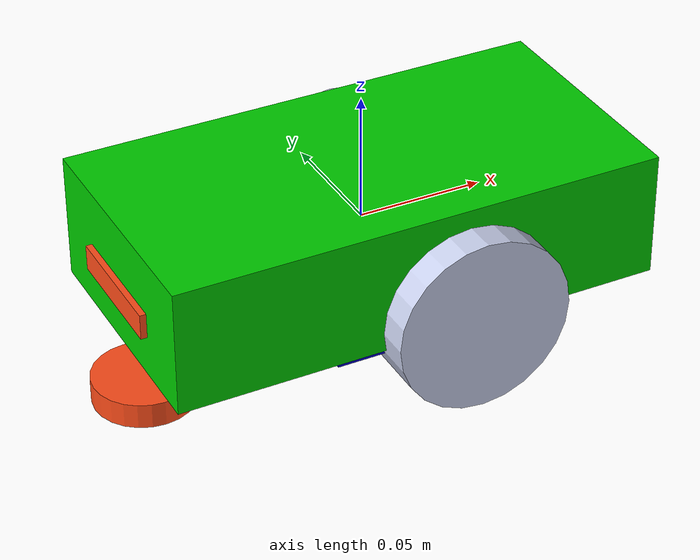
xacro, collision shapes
<?xml version="1.0"?>
<robot xmlns:xacro="http://ros.org/wiki/xacro"
       xmlns:gazebo="http://www.gazebosim.org/schema/gazebo_urdf"
       name="diffbot">

  <!-- === Propiedades === -->

  <xacro:property name="chassis_mass" value="0.800"/>
  <xacro:property name="base_color" value="green"/>
  <xacro:property name="wheel_radius" value="0.035"/> <!-- Radio de la rueda en metros -->
  <xacro:property name="wheel_width" value="0.025"/> <!-- Ancho de la rueda en metros -->
  <xacro:property name="wheel_separation" value="0.16"/> <!-- Separación entre ruedas en metros -->
  <xacro:property name="wheel_color" value="silver"/>
  <xacro:property name="caster_origin_xyz" value="-0.075 0 -0.0075"/> <!-- Posición del caster respecto al chasis -->
  <xacro:property name="caster_color" value="orange"/>

  <!-- === Includes === -->

  <xacro:include filename="$(find tp1_robot)/urdf/inertial_macros.xacro"/>
  <xacro:include filename="$(find tp1_robot)/urdf/motor.xacro"/>

  <!-- === Chasis del robot === -->

  <link name="base_link">
    <visual>
      <geometry>
        <mesh filename="file://$(find tp1_robot)/meshes/chassis.stl"/>
      </geometry>
      <material name="${base_color}"/>
    </visual>
    <collision>
      <geometry>
        <box size="0.195 0.1 0.05"/> <!-- Tamaño del chasis (x: largo, y: ancho, z: alto) -->
      </geometry>
    </collision>
    <xacro:inertial_box mass="${chassis_mass}" x="0.195" y="0.1" z="0.05"/>
  </link>

  <!-- === Macro para ruedas === -->

  <xacro:macro name="wheel" params="prefix xyz axis rpy">
    <link name="${prefix}_wheel">
      <visual>
        <origin xyz="0 0 0" rpy="1.5708 0 0"/>
        <geometry>
          <mesh filename="file://$(find tp1_robot)/meshes/wheel.stl"/>
        </geometry>
        <material name="${wheel_color}"/>
      </visual>
      <collision>
        <origin xyz="0 0 0" rpy="1.5708 0 0"/>
        <geometry>
          <cylinder radius="${wheel_radius}" length="${wheel_width}"/>
        </geometry>
        <!-- Contacto dentro de collision -->
        <contact>
          <ode>
            <min_depth>0.001</min_depth>
            <kp>1e3</kp>
            <kd>1e1</kd>
          </ode>
        </contact>
      </collision>
      <xacro:inertial_cylinder mass="0.150" radius="${wheel_radius}" length="${wheel_width}">
        <origin xyz="0 0 0" rpy="0 0 0"/>
      </xacro:inertial_cylinder>
    </link>

    <joint name="${prefix}_wheel_joint" type="continuous">
      <origin xyz="${xyz}" rpy="${rpy}"/>
      <parent link="base_link"/>
      <child link="${prefix}_wheel"/>
      <axis xyz="${axis}"/>
      <limit effort="10.0" velocity="10.0"/>
      <dynamics damping="0.1"/>
    </joint>

    <!-- Gazebo settings -->
    <gazebo reference="${prefix}_wheel">
      <mu1>1.0</mu1>
      <mu2>1.0</mu2>
      <material>Gazebo/Grey</material>
    </gazebo>
  </xacro:macro>

  <!-- === Ruedas y motores === -->

  <xacro:wheel prefix="left" xyz="0.0185  0.05 -0.0175" axis="0 1 0" rpy="0 1.5708 0"/>
  <xacro:wheel prefix="right" xyz="0.0185 -0.05 -0.0175" axis="0 1 0" rpy="0 1.5708 3.14159"/>
  <xacro:motor prefix="left" chassis_width="0.1" reflect="false"/>
  <xacro:motor prefix="right" chassis_width="0.1" reflect="true"/>

  <!-- === Caster === -->

  <link name="caster">
    <visual>
      <origin xyz="0 0 0.0045" rpy="0 0 0"/>
      <geometry>
        <mesh filename="file://$(find tp1_robot)/meshes/caster_base.stl"/>
      </geometry>
      <material name="${caster_color}"/>
    </visual>
    <collision>
      <origin xyz="0 0 0.0045" rpy="0 0 0"/>
      <geometry>
        <box size="0.05 0.05 0.01"/>
      </geometry>
    </collision>
    <inertial>
      <mass value="0.020"/>
      <inertia ixx="0.001" ixy="0" ixz="0" iyy="0.001" iyz="0" izz="0.001"/>
    </inertial>
  </link>

  <joint name="caster_joint" type="fixed">
    <parent link="base_link"/>
    <child link="caster"/>
    <origin xyz="${caster_origin_xyz}" rpy="0 0 0"/>
  </joint>

  <link name="caster_wheel">
    <visual>
      <origin xyz="-0.015 0 -0.020" rpy="0 0 0"/>
      <geometry>
        <mesh filename="file://$(find tp1_robot)/meshes/caster_wheel.stl"/>
      </geometry>
      <material name="${caster_color}"/>
    </visual>
    <collision>
      <origin xyz="-0.015 0 -0.030" rpy="0 0 0"/>
      <geometry>
        <cylinder radius="0.02" length="0.01"/>
      </geometry>
      <contact>
        <ode>
          <min_depth>0.001</min_depth>
          <kp>1e3</kp>
          <kd>1e1</kd>
        </ode>
      </contact>
    </collision>
    <xacro:inertial_cylinder mass="0.150" radius="0.015" length="0.015">
      <origin xyz="-0.015 0 -0.030" rpy="0 0 0"/>
    </xacro:inertial_cylinder>
  </link>

  <joint name="caster_wheel_joint" type="continuous">
    <parent link="caster"/>
    <child link="caster_wheel"/>
    <origin xyz="0 0 -0.01" rpy="0 0 0"/>
    <axis xyz="0 0 1"/>
  </joint>

  <link name="caster_wheel_support">
    <visual>
      <origin xyz="0 0 0" rpy="0 0 0"/>
      <geometry>
        <mesh filename="file://$(find tp1_robot)/meshes/caster_wheel_support.stl"/>
      </geometry>
      <material name="${caster_color}"/>
    </visual>
    <collision>
      <origin xyz="0 0 0" rpy="0 0 0"/>
      <geometry>
        <box size="0.02 0.02 0.02"/>
      </geometry>
    </collision>
    <inertial>
      <mass value="0.020"/>
      <inertia ixx="0.001" ixy="0" ixz="0" iyy="0.001" iyz="0" izz="0.001"/>
    </inertial>
  </link>

  <joint name="caster_support_joint" type="fixed">
    <parent link="caster_wheel"/>
    <child link="caster_wheel_support"/>
    <origin xyz="0 0 0" rpy="0 0 0"/>
  </joint>

  <!-- === Frame odométrico === -->

  <link name="odom"/>
  <joint name="odom_to_base_link" type="fixed">
    <parent link="odom"/>
    <child link="base_link"/>
    <origin xyz="0 0 0" rpy="0 0 0"/>
  </joint>

  <!-- === ros2_control === -->

  <ros2_control name="GazeboSimSystem" type="system">
    <hardware>
      <plugin>gz_ros2_control/GazeboSimSystem</plugin>
      <param name="robot_param">robot_description</param>
      <param name="legacy_mode">false</param>
      <param name="update_rate">100.0</param>
    </hardware>

    <!-- Interfaces para control diferencial -->
    <joint name="left_wheel_joint">
      <command_interface name="velocity"/>
      <state_interface name="position"/>
      <state_interface name="velocity"/>
    </joint>

    <joint name="right_wheel_joint">
      <command_interface name="velocity"/>
      <state_interface name="position"/>
      <state_interface name="velocity"/>
    </joint>

    <!-- Solo estado para caster -->
    <joint name="caster_wheel_joint">
      <state_interface name="position"/>
      <state_interface name="velocity"/>
    </joint>
  </ros2_control>

  <!-- === Plugin para Gazebo ==== -->

  <gazebo>
    <plugin filename="gz_ros2_control-system" name="gz_ros2_control::GazeboSimROS2ControlPlugin">
      <parameters>$(find tp1_robot)/config/diff_drive_controller.yaml</parameters>
      <robot_sim_type>gz_ros2_control/GazeboSimSystem</robot_sim_type>
      <control_period>0.01</control_period> <!-- 100 Hz -->
    </plugin>
  </gazebo>

  <!-- Material base para evitar warnings -->
  <gazebo reference="base_link">
    <material>Gazebo/Black</material>
  </gazebo>

  <!-- Parámetros físicos para las ruedas -->
  <gazebo reference="left_wheel">
    <mu1>1.0</mu1>
    <mu2>1.0</mu2>
    <fdir1>1 0 0</fdir1>
    <material>Gazebo/Rubber</material>
    <kp>1e3</kp>
    <kd>1e1</kd>
    <maxContacts>10</maxContacts>
  </gazebo>

  <gazebo reference="right_wheel">
    <mu1>1.0</mu1>
    <mu2>1.0</mu2>
    <fdir1>1 0 0</fdir1>
    <material>Gazebo/Rubber</material>
    <kp>1e3</kp>
    <kd>1e1</kd>
    <maxContacts>10</maxContacts>
  </gazebo>

  <gazebo reference="caster_wheel">
    <mu1>0.8</mu1>
    <mu2>0.8</mu2>
    <kp>1e3</kp>
    <kd>1e1</kd>
    <maxContacts>10</maxContacts>
  </gazebo>

  <!-- Ganancias PID (opcional, pero útiles) -->
  <gazebo reference="left_wheel">
    <position_proportional_gain>10.0</position_proportional_gain>
    <velocity_proportional_gain>1.0</velocity_proportional_gain>
    <velocity_integral_gain>0.01</velocity_integral_gain>
    <velocity_derivative_gain>0.0</velocity_derivative_gain>
  </gazebo>

  <gazebo reference="right_wheel">
    <position_proportional_gain>10.0</position_proportional_gain>
    <velocity_proportional_gain>1.0</velocity_proportional_gain>
    <velocity_integral_gain>0.01</velocity_integral_gain>
    <velocity_derivative_gain>0.0</velocity_derivative_gain>
  </gazebo>

</robot>

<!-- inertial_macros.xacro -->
<robot xmlns:xacro="http://www.ros.org/wiki/xacro" >
    <!-- Specify some standard inertial calculations https://en.wikipedia.org/wiki/List_of_moments_of_inertia -->
    <!-- These make use of xacro's mathematical functionality -->

    <xacro:macro name="inertial_sphere" params="mass radius *origin">
        <inertial>
            <xacro:insert_block name="origin"/>
            <mass value="${mass}" />
            <inertia ixx="${(2/5) * mass * (radius*radius)}" ixy="0.0" ixz="0.0"
                    iyy="${(2/5) * mass * (radius*radius)}" iyz="0.0"
                    izz="${(2/5) * mass * (radius*radius)}" />
        </inertial>
    </xacro:macro>

    <xacro:macro name="inertial_box" params="mass x y z">
        <inertial>
            <origin xyz="0 0 0" rpy="0 0 0"/>
            <mass value="${mass}"/>
            <inertia ixx="${(1/12) * mass * (y*y + z*z)}" ixy="0.0" ixz="0.0"
                    iyy="${(1/12) * mass * (x*x + z*z)}" iyz="0.0"
                    izz="${(1/12) * mass * (x*x + y*y)}"/>
        </inertial>
    </xacro:macro>

    <xacro:macro name="inertial_cylinder" params="mass length radius *origin">
        <inertial>
            <xacro:insert_block name="origin"/>
            <mass value="${mass}" />
            <inertia ixx="${(1/12) * mass * (3*radius*radius + length*length)}" ixy="0.0" ixz="0.0"
                    iyy="${(1/12) * mass * (3*radius*radius + length*length)}" iyz="0.0"
                    izz="${(1/2) * mass * (radius*radius)}" />
        </inertial>
    </xacro:macro>

    <xacro:macro name="dummy_inertial">
        <inertial>
            <origin xyz="0 0 0" rpy="0 0 0"/>
            <mass value="0.001"/>
            <inertia ixx="0.00001" ixy="0" ixz="0"
                     iyy="0.00001" iyz="0"
                     izz="0.00001"/>
        </inertial>
    </xacro:macro>

    <!-- RVIZ material RGBA definition -->

    <material name="red">
        <color rgba="0.8 0.0 0.0 1.0"/>
    </material>
    <material name="green">
        <color rgba="0.0 0.8 0.0 1.0"/>
    </material>
    <material name="blue">
        <color rgba="0.0 0.0 0.8 1.0"/>
    </material>
    <material name="black">
        <color rgba="0 0 0 1"/>
    </material>
    <material name="white">
        <color rgba="1 1 1 1"/>
    </material>

    <material name="orange">
        <color rgba="1 0.3 0.1 1"/>
    </material>

    <material name="silver">
        <color rgba="0.79 0.82 0.93 1"/>
    </material>
    <material name="dark_grey">
        <color rgba="0.3 0.3 0.3 1"/>
    </material>
</robot>

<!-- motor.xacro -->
<robot xmlns:xacro="http://ros.org/wiki/xacro"
       xmlns:gazebo="http://www.gazebosim.org/schema/gazebo_urdf">

    <xacro:macro name="motor" params="prefix chassis_width:=0 reflect:=false">
        <!-- Parámetros -->
        <xacro:property name="motor_mass" value="0.1"/>
        <xacro:property name="motor_x_size" value="0.07"/>
        <xacro:property name="motor_y_size" value="0.0188"/>
        <xacro:property name="motor_z_size" value="0.0225"/>

        <xacro:property name="motor_x_offset" value="0.0015"/>
        <xacro:property name="motor_y_offset" value="0.0216"/>
        <xacro:property name="motor_z_offset" value="-0.017"/>

        <xacro:property name="pos_x_joint" value="${motor_x_offset}"/>
        <xacro:property name="pos_y_joint" value="${(chassis_width/2) - motor_y_offset + (motor_y_size/2)}"/>
        <xacro:property name="pos_z_joint" value="${motor_z_offset}"/>

        <!-- Link del motor -->
        <link name="${prefix}_motor">
            <!-- Visual -->
            <visual>
                <origin xyz="0 0 0" rpy="0 0 0"/>
                <geometry>
                    <xacro:if value="${reflect}">
                        <mesh filename="file://$(find tp1_robot)/meshes/motor.stl" scale="1 -1 1"/>
                    </xacro:if>
                    <xacro:unless value="${reflect}">
                        <mesh filename="file://$(find tp1_robot)/meshes/motor.stl"/>
                    </xacro:unless>
                </geometry>
                <material name="blue"/>
            </visual>

            <!-- Colisión -->
            <collision>
                <origin xyz="0 0 0" rpy="0 0 0"/>
                <geometry>
                    <box size="${motor_x_size} ${motor_y_size} ${motor_z_size}"/>
                </geometry>
            </collision>

            <!-- Inercia -->
            <xacro:inertial_box mass="${motor_mass}" x="${motor_x_size}" y="${motor_y_size}" z="${motor_z_size}">
            </xacro:inertial_box>
        </link>

        <!-- Joint del motor -->
        <joint name="${prefix}_motor_joint" type="fixed">
            <parent link="base_link"/>
            <child link="${prefix}_motor"/>

            <xacro:if value="${reflect}">
                <origin xyz="${pos_x_joint} ${-1 * pos_y_joint} ${pos_z_joint}" rpy="0 0 0"/>
            </xacro:if>
            <xacro:unless value="${reflect}">
                <origin xyz="${pos_x_joint} ${pos_y_joint} ${pos_z_joint}" rpy="0 0 0"/>
            </xacro:unless>
        </joint>
    </xacro:macro>
</robot>
